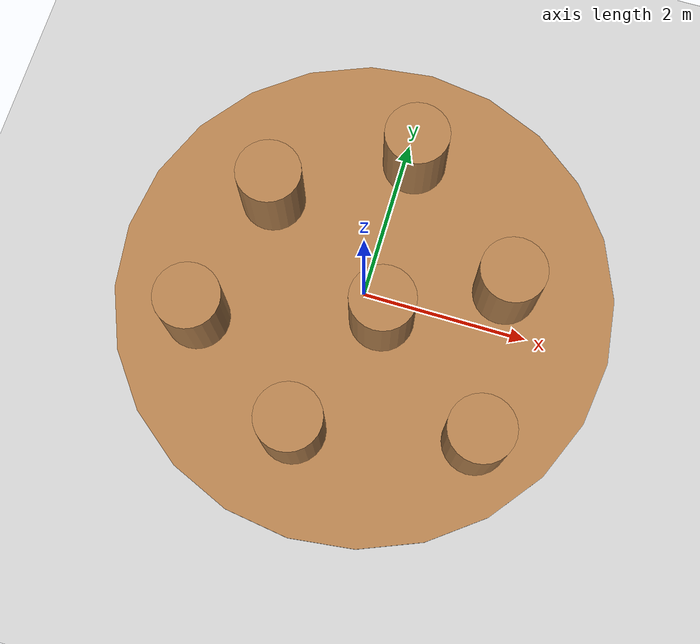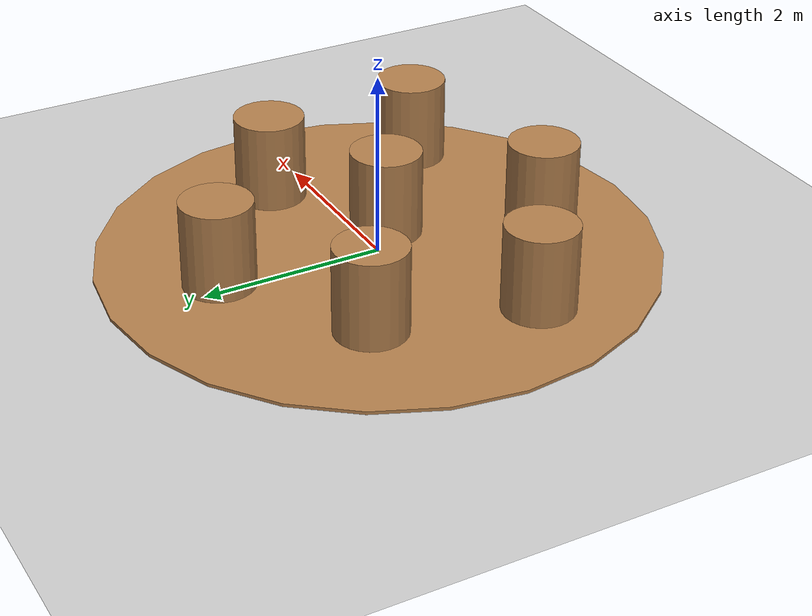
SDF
<sdf version="1.7">
 <world name="default">
  <scene><ambient>0.4 0.4 0.4 1</ambient><background>0.7 0.7 0.7 1</background><shadows>1</shadows></scene>
  <light name="sun" type="directional">
   <pose>0 0 10 0 -0 0</pose>
   <diffuse>0.8 0.8 0.8 1</diffuse>
   <specular>0.2 0.2 0.2 1</specular>
   <attenuation>
    <range>1000</range>
    <constant>0.9</constant>
    <linear>0.01</linear>
    <quadratic>0.001</quadratic>
   </attenuation>
   <direction>-0.5 0.1 -0.9</direction>
   <spot><inner_angle>0</inner_angle><outer_angle>0</outer_angle><falloff>0</falloff></spot>
  </light>
  <model name="ground_plane">
   <static>1</static>
   <link name="link">
    <collision name="collision">
     <geometry><plane><normal>0 0 1</normal><size>100 100</size></plane></geometry>
     <surface><friction><ode><mu>100</mu><mu2>50</mu2></ode></friction></surface>
    </collision>
    <visual name="visual">
     <cast_shadows>0</cast_shadows>
     <geometry><plane><normal>0 0 1</normal><size>100 100</size></plane></geometry>
     <material>
      <script><uri>file://media/materials/scripts/gazebo.material</uri><name>Gazebo/Grey</name></script>
     </material>
    </visual>
   </link>
  </model>
  <physics type="ode">
   <real_time_update_rate>1000</real_time_update_rate>
   <max_step_size>0.001</max_step_size>
   <real_time_factor>1</real_time_factor>
   <ode>
    <solver>
     <type>quick</type>
     <iters>150</iters>
     <precon_iters>0</precon_iters>
     <sor>1.4</sor>
     <use_dynamic_moi_rescaling>1</use_dynamic_moi_rescaling>
    </solver>
    <constraints>
     <cfm>1e-05</cfm>
     <erp>0.2</erp>
     <contact_max_correcting_vel>2000</contact_max_correcting_vel>
     <contact_surface_layer>0.01</contact_surface_layer>
    </constraints>
   </ode>
  </physics>
  <plugin name="marker_visualization_plugin" filename="libgazebo_ros_marker_visualization.so"/>
  <gravity>0 0 -9.8</gravity>
  <magnetic_field>6e-06 2.3e-05 -4.2e-05</magnetic_field>
  <atmosphere type="adiabatic"/>
  <spherical_coordinates>
   <surface_model>EARTH_WGS84</surface_model>
   <latitude_deg>0</latitude_deg>
   <longitude_deg>0</longitude_deg>
   <elevation>0</elevation>
   <heading_deg>0</heading_deg>
  </spherical_coordinates>
  <model name="unit_cylinder_adapted">
   <link name="link">
    <inertial>
     <mass>1</mass>
     <inertia><ixx>0.145833</ixx><ixy>0</ixy><ixz>0</ixz><iyy>0.145833</iyy><iyz>0</iyz><izz>0.125</izz></inertia>
    </inertial>
    <visual name="visual">
     <geometry><cylinder><radius>3.00957</radius><length>0.035372</length></cylinder></geometry>
     <material>
      <script><uri>file://media/materials/scripts/gazebo.material</uri><name>Gazebo/Wood</name></script>
      <ambient>1 1 1 1</ambient>
      <shader type="pixel"><normal_map>__default__</normal_map></shader>
      <diffuse>1 1 1 1</diffuse>
      <specular>0.2 0.2 0.2 1</specular>
      <emissive>0 0 0 1</emissive>
     </material>
    </visual>
    <collision name="collision">
     <geometry><cylinder><radius>3.00957</radius><length>0.035372</length></cylinder></geometry>
     <surface>
      <friction>
       <ode><mu>1</mu><mu2>1</mu2><fdir1>0 0 0</fdir1><slip1>0</slip1><slip2>0</slip2></ode>
       <torsional>
        <coefficient>1</coefficient>
        <patch_radius>0</patch_radius>
        <surface_radius>0</surface_radius>
        <use_patch_radius>1</use_patch_radius>
        <ode><slip>0</slip></ode>
       </torsional>
      </friction>
      <bounce><restitution_coefficient>0</restitution_coefficient><threshold>1e+06</threshold></bounce>
      <contact>
       <collide_without_contact>0</collide_without_contact>
       <collide_without_contact_bitmask>1</collide_without_contact_bitmask>
       <collide_bitmask>1</collide_bitmask>
       <ode>
        <soft_cfm>0</soft_cfm>
        <soft_erp>0.2</soft_erp>
        <kp>1e+13</kp>
        <kd>1</kd>
        <max_vel>0.01</max_vel>
        <min_depth>0</min_depth>
       </ode>
       <bullet>
        <split_impulse>1</split_impulse>
        <split_impulse_penetration_threshold>-0.01</split_impulse_penetration_threshold>
        <soft_cfm>0</soft_cfm>
        <soft_erp>0.2</soft_erp>
        <kp>1e+13</kp>
        <kd>1</kd>
       </bullet>
      </contact>
     </surface>
    </collision>
   </link>
   <static>0</static>
   <pose>-0.001688 -0.002717 0.017686 0 0 -0.007086</pose>
  </model>
  <model name="obstacle_1">
   <pose>0.289745 -0.252323 0.5 0 -0 0</pose>
   <link name="link">
    <inertial>
     <mass>1</mass>
     <inertia><ixx>0.145833</ixx><ixy>0</ixy><ixz>0</ixz><iyy>0.145833</iyy><iyz>0</iyz><izz>0.125</izz></inertia>
    </inertial>
    <collision name="collision">
     <geometry><cylinder><radius>0.389534</radius><length>1</length></cylinder></geometry>
    </collision>
    <visual name="visual">
     <geometry><cylinder><radius>0.389534</radius><length>1</length></cylinder></geometry>
     <material>
      <script><uri>file://media/materials/scripts/gazebo.material</uri><name>Gazebo/Wood</name></script>
      <ambient>1 1 1 1</ambient>
      <shader type="pixel"><normal_map>__default__</normal_map></shader>
      <diffuse>1 1 1 1</diffuse>
      <specular>0.2 0.2 0.2 1</specular>
      <emissive>0 0 0 1</emissive>
     </material>
    </visual>
   </link>
  </model>
  <model name="obstacle_2">
   <pose>0.124899 1.77397 0.5 0 -0 0</pose>
   <link name="link">
    <inertial>
     <mass>1</mass>
     <inertia><ixx>0.145833</ixx><ixy>0</ixy><ixz>0</ixz><iyy>0.145833</iyy><iyz>0</iyz><izz>0.125</izz></inertia>
    </inertial>
    <collision name="collision">
     <geometry><cylinder><radius>0.389534</radius><length>1</length></cylinder></geometry>
    </collision>
    <visual name="visual">
     <geometry><cylinder><radius>0.389534</radius><length>1</length></cylinder></geometry>
     <material>
      <script><uri>file://media/materials/scripts/gazebo.material</uri><name>Gazebo/Wood</name></script>
      <ambient>1 1 1 1</ambient>
      <shader type="pixel"><normal_map>__default__</normal_map></shader>
      <diffuse>1 1 1 1</diffuse>
      <specular>0.2 0.2 0.2 1</specular>
      <emissive>0 0 0 1</emissive>
     </material>
    </visual>
   </link>
  </model>
  <model name="obstacle_3">
   <pose>-1.40238 0.831415 0.5 0 -0 0</pose>
   <link name="link">
    <inertial>
     <mass>1</mass>
     <inertia><ixx>0.145833</ixx><ixy>0</ixy><ixz>0</ixz><iyy>0.145833</iyy><iyz>0</iyz><izz>0.125</izz></inertia>
    </inertial>
    <collision name="collision">
     <geometry><cylinder><radius>0.389534</radius><length>1</length></cylinder></geometry>
    </collision>
    <visual name="visual">
     <geometry><cylinder><radius>0.389534</radius><length>1</length></cylinder></geometry>
     <material>
      <script><uri>file://media/materials/scripts/gazebo.material</uri><name>Gazebo/Wood</name></script>
      <ambient>1 1 1 1</ambient>
      <shader type="pixel"><normal_map>__default__</normal_map></shader>
      <diffuse>1 1 1 1</diffuse>
      <specular>0.2 0.2 0.2 1</specular>
      <emissive>0 0 0 1</emissive>
     </material>
    </visual>
   </link>
  </model>
  <model name="obstacle_4">
   <pose>-0.324346 -1.82835 0.5 0 -0 0</pose>
   <link name="link">
    <inertial>
     <mass>1</mass>
     <inertia><ixx>0.145833</ixx><ixy>0</ixy><ixz>0</ixz><iyy>0.145833</iyy><iyz>0</iyz><izz>0.125</izz></inertia>
    </inertial>
    <collision name="collision">
     <geometry><cylinder><radius>0.389534</radius><length>1</length></cylinder></geometry>
    </collision>
    <visual name="visual">
     <geometry><cylinder><radius>0.389534</radius><length>1</length></cylinder></geometry>
     <material>
      <script><uri>file://media/materials/scripts/gazebo.material</uri><name>Gazebo/Wood</name></script>
      <ambient>1 1 1 1</ambient>
      <shader type="pixel"><normal_map>__default__</normal_map></shader>
      <diffuse>1 1 1 1</diffuse>
      <specular>0.2 0.2 0.2 1</specular>
      <emissive>0 0 0 1</emissive>
     </material>
    </visual>
   </link>
  </model>
  <model name="obstacle_5">
   <pose>1.61865 0.480521 0.5 0 -0 0</pose>
   <link name="link">
    <inertial>
     <mass>1</mass>
     <inertia><ixx>0.145833</ixx><ixy>0</ixy><ixz>0</ixz><iyy>0.145833</iyy><iyz>0</iyz><izz>0.125</izz></inertia>
    </inertial>
    <collision name="collision">
     <geometry><cylinder><radius>0.389534</radius><length>1</length></cylinder></geometry>
    </collision>
    <visual name="visual">
     <geometry><cylinder><radius>0.389534</radius><length>1</length></cylinder></geometry>
     <material>
      <script><uri>file://media/materials/scripts/gazebo.material</uri><name>Gazebo/Wood</name></script>
      <ambient>1 1 1 1</ambient>
      <shader type="pixel"><normal_map>__default__</normal_map></shader>
      <diffuse>1 1 1 1</diffuse>
      <specular>0.2 0.2 0.2 1</specular>
      <emissive>0 0 0 1</emissive>
     </material>
    </visual>
   </link>
  </model>
  <model name="obstacle_6">
   <pose>-1.82265 -0.845824 0.5 0 -0 0</pose>
   <link name="link">
    <inertial>
     <mass>1</mass>
     <inertia><ixx>0.145833</ixx><ixy>0</ixy><ixz>0</ixz><iyy>0.145833</iyy><iyz>0</iyz><izz>0.125</izz></inertia>
    </inertial>
    <collision name="collision">
     <geometry><cylinder><radius>0.389534</radius><length>1</length></cylinder></geometry>
    </collision>
    <visual name="visual">
     <geometry><cylinder><radius>0.389534</radius><length>1</length></cylinder></geometry>
     <material>
      <script><uri>file://media/materials/scripts/gazebo.material</uri><name>Gazebo/Wood</name></script>
      <ambient>1 1 1 1</ambient>
      <shader type="pixel"><normal_map>__default__</normal_map></shader>
      <diffuse>1 1 1 1</diffuse>
      <specular>0.2 0.2 0.2 1</specular>
      <emissive>0 0 0 1</emissive>
     </material>
    </visual>
   </link>
  </model>
  <model name="obstacle_7">
   <pose>1.73195 -1.35642 0.5 0 -0 0</pose>
   <link name="link">
    <inertial>
     <mass>1</mass>
     <inertia><ixx>0.145833</ixx><ixy>0</ixy><ixz>0</ixz><iyy>0.145833</iyy><iyz>0</iyz><izz>0.125</izz></inertia>
    </inertial>
    <collision name="collision">
     <geometry><cylinder><radius>0.389534</radius><length>1</length></cylinder></geometry>
    </collision>
    <visual name="visual">
     <geometry><cylinder><radius>0.389534</radius><length>1</length></cylinder></geometry>
     <material>
      <script><uri>file://media/materials/scripts/gazebo.material</uri><name>Gazebo/Wood</name></script>
      <ambient>1 1 1 1</ambient>
      <shader type="pixel"><normal_map>__default__</normal_map></shader>
      <diffuse>1 1 1 1</diffuse>
      <specular>0.2 0.2 0.2 1</specular>
      <emissive>0 0 0 1</emissive>
     </material>
    </visual>
   </link>
  </model>
 </world>
</sdf>
